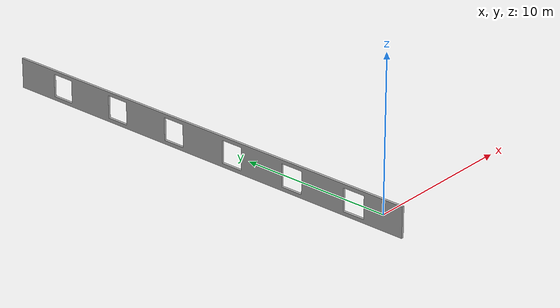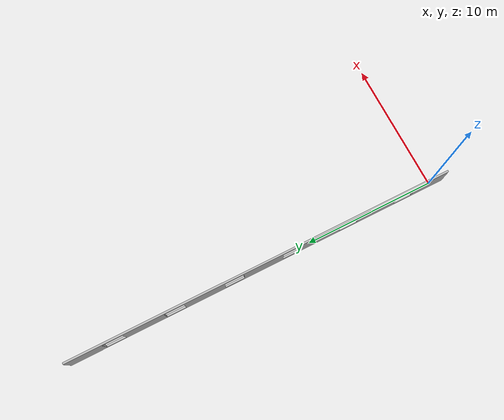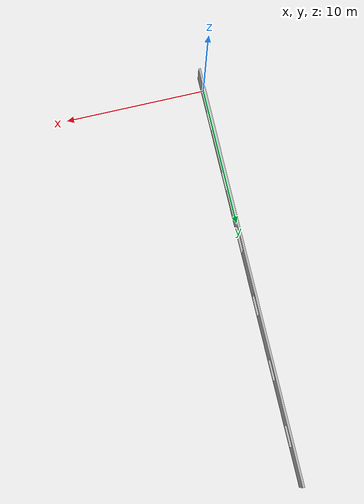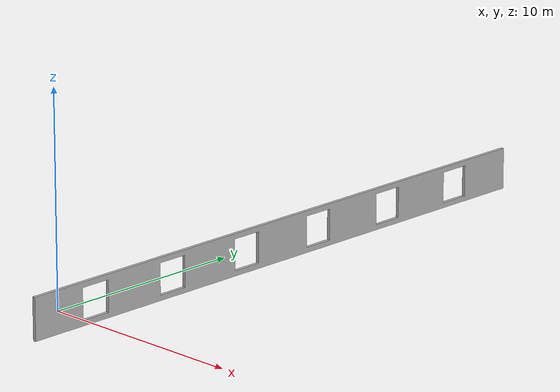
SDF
<?xml version='1.0'?>
<sdf version="1.6">
<model name="front">
  <static>true</static>
    <link name="link">
      <visual name="visual">
        <geometry>
          <mesh>
            <uri>model://front/meshes/front.dae</uri>
          </mesh>
        </geometry>
      </visual>
    </link>
  </model>
</sdf>
